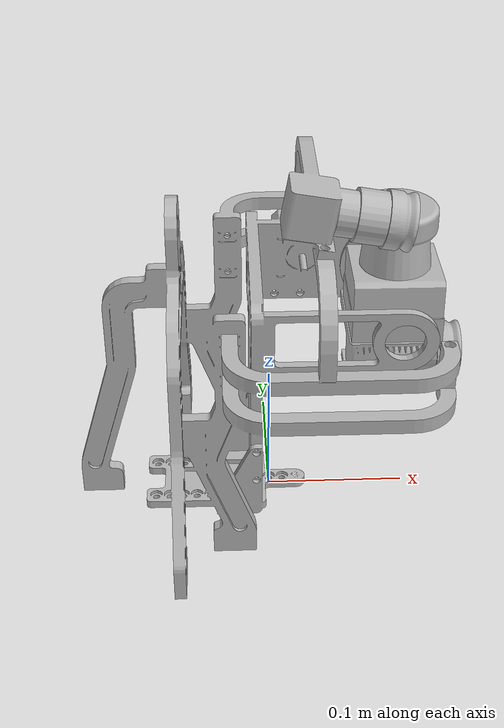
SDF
<?xml version='1.0' ?>
<sdf version='1.4'>
  <model name='DRC_head_kinect'>
    <pose>0 0 0 0 0 0</pose>

    <link name ='Body_Head'>
      <pose>0 0 0 0 0 0</pose>
      <inertial>
        <pose>-0.0080768 0.0056186 0.13872 0 0 0</pose>
        <mass>0.0069065</mass>
        <inertia>
          <ixx>0.000068275</ixx>
          <ixy>0.0000011826</ixy>
          <ixz>0.000014243</ixz>
          <iyy>0.000060857</iyy>
          <iyz>-0.0000045042</iyz>
          <izz>0.000053323</izz>
        </inertia>
      </inertial>
      <collision name='Body_Head_collision'>
        <pose>0 0 0 0 -0 0</pose>
        <geometry>
          <mesh>
            <scale>1 1 1</scale>
            <uri>model://DRC_hubo/meshes/Body_Head.STL</uri>
          </mesh>
        </geometry>
      </collision>
      <visual name='Body_Head_visual'>
        <pose>0 0 0 0 -0 0</pose>
        <geometry>
          <mesh>
            <scale>1 1 1</scale>
            <uri>model://DRC_hubo/meshes/Body_Head.STL</uri>
          </mesh>
        </geometry>
      </visual>

      <sensor type="depth" name="streaming_camera">
        <pose>0.082 -0.063 0.253 0 0.1746 0</pose>
        <update_rate>20.0</update_rate>
        <visualize>false</visualize>
        <always_on>1</always_on>
        <camera name="streaming">
          <horizontal_fov>2.094</horizontal_fov>
          <image>
            <width>1000</width>
            <height>800</height>
            <format>R8G8B8</format>
          </image>
          <clip>
            <near>0.02</near>
            <far>300</far>
          </clip>
          <noise>
            <type>gaussian</type>
            <!-- Noise is sampled independently per pixel on each frame.
                 That pixel's noise value is added to each of its color
                 channels, which at that point lie in the range [0,1]. -->
            <mean>0.0</mean>
            <stddev>0.007</stddev>
          </noise>
        </camera>
        <plugin name="camera_controller" filename="libgazebo_ros_openni_kinect.so">
          <baseline>0.2</baseline>
          <alwaysOn>true</alwaysOn>
          <updateRate>1.0</updateRate>
          <cameraName>streaming_camera</cameraName>
          <imageTopicName>streaming_raw</imageTopicName>
          <cameraInfoTopicName>streaming_info</cameraInfoTopicName>
          <depthImageTopicName>streaming_depth_raw</depthImageTopicName>
          <depthImageCameraInfoTopicName>streaming_depth_info</depthImageCameraInfoTopicName>
          <pointCloudTopicName>streaming_points</pointCloudTopicName>
          <frameName>Sensor_streaming</frameName>
          <pointCloudCutoff>0.5</pointCloudCutoff>
          <pointCloudCutoffMax>0.7</pointCloudCutoffMax>
          <distortionK1>0.00000001</distortionK1>
          <distortionK2>0.00000001</distortionK2>
          <distortionK3>0.00000001</distortionK3>
          <distortionT1>0.00000001</distortionT1>
          <distortionT2>0.00000001</distortionT2>
          <CxPrime>0</CxPrime>
          <Cx>0</Cx>
          <Cy>0</Cy>
          <focalLength>0</focalLength>
          <hackBaseline>0</hackBaseline>
        </plugin>
      </sensor>
    </link>

    <joint name='Head_Sensor' type='revolute'>
      <child>Body_Hokuyo</child>
      <parent>Body_Head</parent>
      <axis>
        <xyz>0 1 0</xyz>
        <limit>
          <lower>-5</lower>
          <upper>5</upper>
          <effort>10</effort>
          <velocity>1</velocity>
        </limit>
        <dynamics>
          <damping>15</damping> <friction>2</friction>
        </dynamics>
      </axis>
    </joint>

    <link name='Body_Hokuyo'>
      <pose>0.085 0.0425 0.165 0 0 0</pose>
      <inertial>
        <pose>0.0010159 -0.041037 0.0011902 0 0 0</pose>
        <mass>0.0034186</mass>
        <inertia>
          <ixx>0.0000046452</ixx>
          <ixy>-4.8449E-08</ixy>
          <ixz>-2.3351E-07</ixz>
          <iyy>0.0000048884</iyy>
          <iyz>1.6828E-08</iyz>
          <izz>0.0000020206</izz>
        </inertia>
      </inertial>
      <visual name='Body_Hokuyo_visual'>
        <pose>0 0 0 0 -0 0</pose>
        <geometry>
          <mesh>
            <scale>1 1 1</scale>
            <uri>model://DRC_hubo/meshes/Body_Hokuyo.STL</uri>
          </mesh>
        </geometry>
      </visual>
      <collision name='Body_Hokuyo_collision-base'>
        <pose>0 0 0 0 -0 0</pose>
        <geometry>
          <mesh>
            <scale>1 1 1</scale>
            <uri>model://DRC_hubo/meshes/Body_Hokuyo.STL</uri>
          </mesh>
        </geometry>
      </collision>

      <sensor name='laser' type='ray'>
        <pose>0 -0.042 0.036 0 -0 0</pose>
        <always_on>1</always_on>
        <update_rate>40</update_rate>
        <visualize>false</visualize>
        <ray>
          <scan>
            <horizontal>
              <samples>1000</samples>
              <resolution>1</resolution>
              <min_angle>-1.745</min_angle>
              <max_angle>1.745</max_angle>
            </horizontal>
          </scan>
          <range>
            <min>0.1</min>
            <max>10</max>
            <resolution>0.005</resolution>
          </range>
        </ray>

        <plugin name='gazebo_ros_hokuyo_plugin' filename='libgazebo_ros_laser.so'>
          <topicName>/scan</topicName>
          <frameName>Sensor_scan</frameName>
        </plugin>
      </sensor>

      <sensor type="camera" name="head_camera">
        <pose>0.05 -0.043 -0.042 0 -0 0</pose>
        <update_rate>20.0</update_rate>
        <visualize>false</visualize>
        <always_on>1</always_on>
        <camera name="head">
          <horizontal_fov>2.094</horizontal_fov>
          <image>
            <width>1000</width>
            <height>800</height>
            <format>R8G8B8</format>
          </image>
          <clip>
            <near>0.02</near>
            <far>300</far>
          </clip>
          <noise>
            <type>gaussian</type>
            <!-- Noise is sampled independently per pixel on each frame.
                 That pixel's noise value is added to each of its color
                 channels, which at that point lie in the range [0,1]. -->
            <mean>0.0</mean>
            <stddev>0.007</stddev>
          </noise>
        </camera>

        <plugin name="camera_controller" filename="libgazebo_ros_camera.so">
          <alwaysOn>true</alwaysOn>
          <updateRate>0.0</updateRate>
          <cameraName>head_camera</cameraName>
          <imageTopicName>image_raw</imageTopicName>
          <cameraInfoTopicName>camera_info</cameraInfoTopicName>
          <frameName>Sensor_camera</frameName>
          <hackBaseline>0.07</hackBaseline>
          <distortionK1>0.0</distortionK1>
          <distortionK2>0.0</distortionK2>
          <distortionK3>0.0</distortionK3>
          <distortionT1>0.0</distortionT1>
          <distortionT2>0.0</distortionT2>
        </plugin>
      </sensor>
    </link>

  <plugin name="head_plugin" filename="~/catkin_ws/devel/lib/libhead_plugin.so"/>

  </model>
</sdf>
